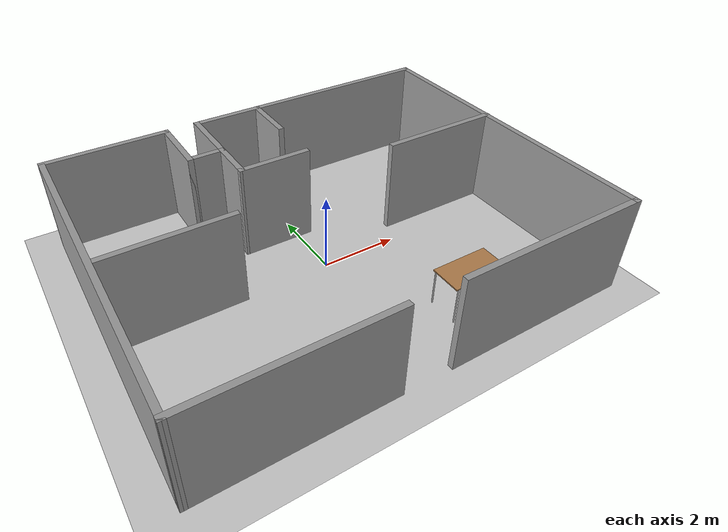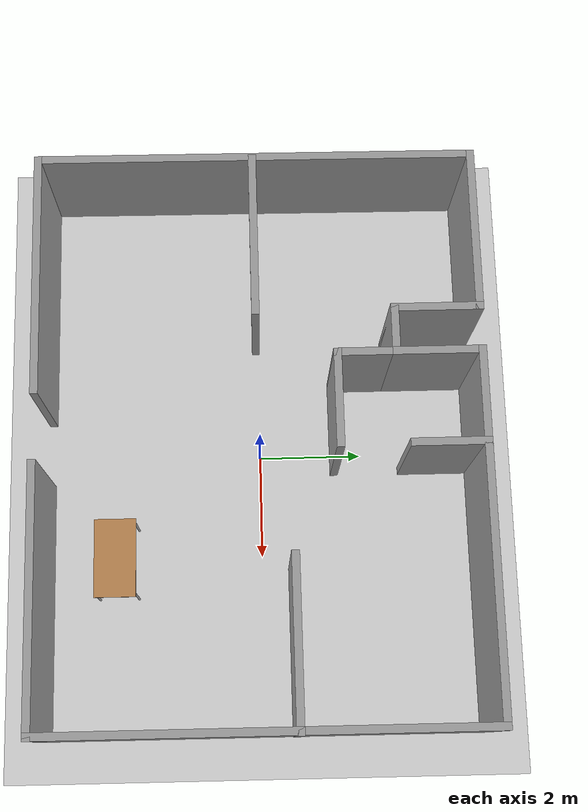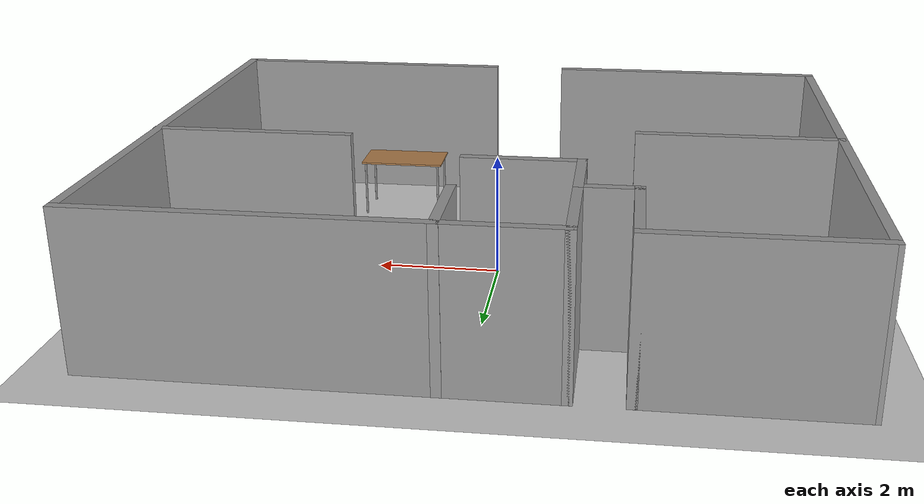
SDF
<sdf version="1.6">
 <world name="default">
  <light name="sun" type="directional">
   <pose>0 0 10 0 -0 0</pose>
   <diffuse>0.8 0.8 0.8 1</diffuse>
   <specular>0.2 0.2 0.2 1</specular>
   <attenuation>
    <range>1000</range>
    <constant>0.9</constant>
    <linear>0.01</linear>
    <quadratic>0.001</quadratic>
   </attenuation>
   <direction>-0.5 0.1 -0.9</direction>
  </light>
  <model name="ground_plane">
   <static>1</static>
   <link name="link">
    <collision name="collision">
     <geometry><plane><normal>0 0 1</normal><size>100 100</size></plane></geometry>
     <surface>
      <contact><collide_bitmask>65535</collide_bitmask></contact>
      <friction><ode><mu>100</mu><mu2>50</mu2></ode></friction>
     </surface>
    </collision>
    <visual name="visual">
     <cast_shadows>0</cast_shadows>
     <geometry><plane><normal>0 0 1</normal><size>100 100</size></plane></geometry>
     <material>
      <script><uri>file://media/materials/scripts/gazebo.material</uri><name>Gazebo/Grey</name></script>
     </material>
    </visual>
   </link>
  </model>
  <gravity>0 0 -9.8</gravity>
  <magnetic_field>6e-06 2.3e-05 -4.2e-05</magnetic_field>
  <atmosphere type="adiabatic"/>
  <physics name="default_physics" default="0" type="ode">
   <max_step_size>0.001</max_step_size>
   <real_time_factor>1</real_time_factor>
   <real_time_update_rate>1000</real_time_update_rate>
  </physics>
  <scene><ambient>0.4 0.4 0.4 1</ambient><background>0.7 0.7 0.7 1</background><shadows>1</shadows></scene>
  <spherical_coordinates>
   <surface_model>EARTH_WGS84</surface_model>
   <latitude_deg>0</latitude_deg>
   <longitude_deg>0</longitude_deg>
   <elevation>0</elevation>
   <heading_deg>0</heading_deg>
  </spherical_coordinates>
  <model name="living_lab">
   <link name="Wall_0">
    <collision name="Wall_0_Collision">
     <geometry><box><size>3.25 0.15 2.5</size></box></geometry>
     <pose>0 0 1.25 0 -0 0</pose>
    </collision>
    <visual name="Wall_0_Visual">
     <pose>0 0 1.25 0 -0 0</pose>
     <geometry><box><size>3.25 0.15 2.5</size></box></geometry>
     <material>
      <script><uri>file://media/materials/scripts/gazebo.material</uri><name>Gazebo/Grey</name></script>
      <ambient>1 1 1 1</ambient>
     </material>
     <meta><layer>0</layer></meta>
    </visual>
    <pose>-3.83237 4.17394 0 0 -0 0</pose>
   </link>
   <link name="Wall_1">
    <collision name="Wall_1_Collision">
     <geometry><box><size>1.75 0.15 2.5</size></box></geometry>
     <pose>0 0 1.25 0 -0 0</pose>
    </collision>
    <visual name="Wall_1_Visual">
     <pose>0 0 1.25 0 -0 0</pose>
     <geometry><box><size>1.75 0.15 2.5</size></box></geometry>
     <material>
      <script><uri>file://media/materials/scripts/gazebo.material</uri><name>Gazebo/Grey</name></script>
      <ambient>1 1 1 1</ambient>
     </material>
     <meta><layer>0</layer></meta>
    </visual>
    <pose>-2.28237 3.37394 0 0 -0 -1.5708</pose>
   </link>
   <link name="Wall_10">
    <collision name="Wall_10_Collision">
     <geometry><box><size>7 0.15 2.5</size></box></geometry>
     <pose>0 0 1.25 0 -0 0</pose>
    </collision>
    <visual name="Wall_10_Visual">
     <pose>0 0 1.25 0 -0 0</pose>
     <geometry><box><size>7 0.15 2.5</size></box></geometry>
     <material>
      <script><uri>file://media/materials/scripts/gazebo.material</uri><name>Gazebo/Grey</name></script>
      <ambient>1 1 1 1</ambient>
     </material>
     <meta><layer>0</layer></meta>
    </visual>
    <pose>1.99263 4.17394 0 0 -0 0</pose>
   </link>
   <link name="Wall_12">
    <collision name="Wall_12_Collision">
     <geometry><box><size>8.5 0.15 2.5</size></box></geometry>
     <pose>0 0 1.25 0 -0 0</pose>
    </collision>
    <visual name="Wall_12_Visual">
     <pose>0 0 1.25 0 -0 0</pose>
     <geometry><box><size>8.5 0.15 2.5</size></box></geometry>
     <material>
      <script><uri>file://media/materials/scripts/gazebo.material</uri><name>Gazebo/Grey</name></script>
      <ambient>1 1 1 1</ambient>
     </material>
     <meta><layer>0</layer></meta>
    </visual>
    <pose>5.41763 -0.001063 0 0 -0 -1.5708</pose>
   </link>
   <link name="Wall_13">
    <collision name="Wall_13_Collision">
     <geometry><box><size>5 0.15 2.5</size></box></geometry>
     <pose>0 0 1.25 0 -0 0</pose>
    </collision>
    <visual name="Wall_13_Visual">
     <pose>0 0 1.25 0 -0 0</pose>
     <geometry><box><size>5 0.15 2.5</size></box></geometry>
     <material>
      <script><uri>file://media/materials/scripts/gazebo.material</uri><name>Gazebo/Grey</name></script>
      <ambient>1 1 1 1</ambient>
     </material>
     <meta><layer>0</layer></meta>
    </visual>
    <pose>2.99263 -4.17606 0 0 -0 3.14159</pose>
   </link>
   <link name="Wall_15">
    <collision name="Wall_15_Collision">
     <geometry><box><size>4.75 0.15 2.5</size></box></geometry>
     <pose>0 0 1.25 0 -0 0</pose>
    </collision>
    <visual name="Wall_15_Visual">
     <pose>0 0 1.25 0 -0 0</pose>
     <geometry><box><size>4.75 0.15 2.5</size></box></geometry>
     <material>
      <script><uri>file://media/materials/scripts/gazebo.material</uri><name>Gazebo/Grey</name></script>
      <ambient>1 1 1 1</ambient>
     </material>
     <meta><layer>0</layer></meta>
    </visual>
    <pose>-3.12746 -4.16076 0 0 -0 3.14159</pose>
   </link>
   <link name="Wall_17">
    <collision name="Wall_17_Collision">
     <geometry><box><size>8.48482 0.15 2.5</size></box></geometry>
     <pose>0 0 1.25 0 -0 0</pose>
    </collision>
    <visual name="Wall_17_Visual">
     <pose>0 0 1.25 0 -0 0</pose>
     <geometry><box><size>8.48482 0.15 2.5</size></box></geometry>
     <material>
      <script><uri>file://media/materials/scripts/gazebo.material</uri><name>Gazebo/Grey</name></script>
      <ambient>1 1 1 1</ambient>
     </material>
     <meta><layer>0</layer></meta>
    </visual>
    <pose>-5.40491 0.006586 0 0 -0 1.56539</pose>
   </link>
   <link name="Wall_19">
    <collision name="Wall_19_Collision">
     <geometry><box><size>3.25 0.15 2.5</size></box></geometry>
     <pose>0 0 1.25 0 -0 0</pose>
    </collision>
    <visual name="Wall_19_Visual">
     <pose>0 0 1.25 0 -0 0</pose>
     <geometry><box><size>3.25 0.15 2.5</size></box></geometry>
     <material>
      <script><uri>file://media/materials/scripts/gazebo.material</uri><name>Gazebo/Grey</name></script>
      <ambient>1 1 1 1</ambient>
     </material>
     <meta><layer>0</layer></meta>
    </visual>
    <pose>-3.82313 -0.037483 0 0 -0 0</pose>
   </link>
   <link name="Wall_2">
    <collision name="Wall_2_Collision">
     <geometry><box><size>1 0.15 2.5</size></box></geometry>
     <pose>0 0 1.25 0 -0 0</pose>
    </collision>
    <visual name="Wall_2_Visual">
     <pose>0 0 1.25 0 -0 0</pose>
     <geometry><box><size>1 0.15 2.5</size></box></geometry>
     <material>
      <script><uri>file://media/materials/scripts/gazebo.material</uri><name>Gazebo/Grey</name></script>
      <ambient>1 1 1 1</ambient>
     </material>
     <meta><layer>0</layer></meta>
    </visual>
    <pose>-1.85737 2.57394 0 0 -0 0</pose>
   </link>
   <link name="Wall_21">
    <collision name="Wall_21_Collision">
     <geometry><box><size>3.25 0.15 2.5</size></box></geometry>
     <pose>0 0 1.25 0 -0 0</pose>
    </collision>
    <visual name="Wall_21_Visual">
     <pose>0 0 1.25 0 -0 0</pose>
     <geometry><box><size>3.25 0.15 2.5</size></box></geometry>
     <material>
      <script><uri>file://media/materials/scripts/gazebo.material</uri><name>Gazebo/Grey</name></script>
      <ambient>1 1 1 1</ambient>
     </material>
     <meta><layer>0</layer></meta>
    </visual>
    <pose>3.87786 0.586038 0 0 -0 3.14159</pose>
   </link>
   <link name="Wall_24">
    <collision name="Wall_24_Collision">
     <geometry><box><size>1.5 0.15 2.5</size></box></geometry>
     <pose>0 0 1.25 0 -0 0</pose>
    </collision>
    <visual name="Wall_24_Visual">
     <pose>0 0 1.25 0 -0 0</pose>
     <geometry><box><size>1.5 0.15 2.5</size></box></geometry>
     <material>
      <script><uri>file://media/materials/scripts/gazebo.material</uri><name>Gazebo/Grey</name></script>
      <ambient>1 1 1 1</ambient>
     </material>
     <meta><layer>0</layer></meta>
    </visual>
    <pose>0.319016 3.50106 0 0 -0 -1.5708</pose>
   </link>
   <link name="Wall_3">
    <collision name="Wall_3_Collision">
     <geometry><box><size>1.25 0.15 2.5</size></box></geometry>
     <pose>0 0 1.25 0 -0 0</pose>
    </collision>
    <visual name="Wall_3_Visual">
     <pose>0 0 1.25 0 -0 0</pose>
     <geometry><box><size>1.25 0.15 2.5</size></box></geometry>
     <material>
      <script><uri>file://media/materials/scripts/gazebo.material</uri><name>Gazebo/Grey</name></script>
      <ambient>1 1 1 1</ambient>
     </material>
     <meta><layer>0</layer></meta>
    </visual>
    <pose>-1.43237 2.02394 0 0 -0 -1.5708</pose>
   </link>
   <link name="Wall_4">
    <collision name="Wall_4_Collision">
     <geometry><box><size>1.89133 0.15 2.5</size></box></geometry>
     <pose>0 0 1.25 0 -0 0</pose>
    </collision>
    <visual name="Wall_4_Visual">
     <pose>0 0 1.25 0 -0 0</pose>
     <geometry><box><size>1.89133 0.15 2.5</size></box></geometry>
     <material>
      <script><uri>file://media/materials/scripts/gazebo.material</uri><name>Gazebo/Grey</name></script>
      <ambient>1 1 1 1</ambient>
     </material>
     <meta><layer>0</layer></meta>
    </visual>
    <pose>-0.561748 1.47291 0 0 -0 -0.001179</pose>
   </link>
   <link name="Wall_9">
    <collision name="Wall_9_Collision">
     <geometry><box><size>1.75 0.15 2.5</size></box></geometry>
     <pose>0 0 1.25 0 -0 0</pose>
    </collision>
    <visual name="Wall_9_Visual">
     <pose>0 0 1.25 0 -0 0</pose>
     <geometry><box><size>1.75 0.15 2.5</size></box></geometry>
     <material>
      <script><uri>file://media/materials/scripts/gazebo.material</uri><name>Gazebo/Grey</name></script>
      <ambient>1 1 1 1</ambient>
     </material>
     <meta><layer>0</layer></meta>
    </visual>
    <pose>-1.43237 3.37394 0 0 -0 1.5708</pose>
   </link>
   <static>1</static>
  </model>
  <audio><device>default</device></audio>
  <model name="table">
   <static>1</static>
   <link name="link">
    <collision name="surface">
     <pose>0 0 1 0 -0 0</pose>
     <geometry><box><size>1.5 0.8 0.03</size></box></geometry>
     <surface><friction><ode><mu>0.6</mu><mu2>0.6</mu2></ode></friction></surface>
    </collision>
    <visual name="visual1">
     <pose>0 0 1 0 -0 0</pose>
     <geometry><box><size>1.5 0.8 0.03</size></box></geometry>
     <material>
      <script><uri>file://media/materials/scripts/gazebo.material</uri><name>Gazebo/Wood</name></script>
     </material>
    </visual>
    <collision name="front_left_leg">
     <pose>0.68 0.38 0.5 0 -0 0</pose>
     <geometry><cylinder><radius>0.02</radius><length>1</length></cylinder></geometry>
    </collision>
    <visual name="front_left_leg">
     <pose>0.68 0.38 0.5 0 -0 0</pose>
     <geometry><cylinder><radius>0.02</radius><length>1</length></cylinder></geometry>
     <material>
      <script><uri>file://media/materials/scripts/gazebo.material</uri><name>Gazebo/Grey</name></script>
     </material>
    </visual>
    <collision name="front_right_leg">
     <pose>0.68 -0.38 0.5 0 -0 0</pose>
     <geometry><cylinder><radius>0.02</radius><length>1</length></cylinder></geometry>
    </collision>
    <visual name="front_right_leg">
     <pose>0.68 -0.38 0.5 0 -0 0</pose>
     <geometry><cylinder><radius>0.02</radius><length>1</length></cylinder></geometry>
     <material>
      <script><uri>file://media/materials/scripts/gazebo.material</uri><name>Gazebo/Grey</name></script>
     </material>
    </visual>
    <collision name="back_right_leg">
     <pose>-0.68 -0.38 0.5 0 -0 0</pose>
     <geometry><cylinder><radius>0.02</radius><length>1</length></cylinder></geometry>
    </collision>
    <visual name="back_right_leg">
     <pose>-0.68 -0.38 0.5 0 -0 0</pose>
     <geometry><cylinder><radius>0.02</radius><length>1</length></cylinder></geometry>
     <material>
      <script><uri>file://media/materials/scripts/gazebo.material</uri><name>Gazebo/Grey</name></script>
     </material>
    </visual>
    <collision name="back_left_leg">
     <pose>-0.68 0.38 0.5 0 -0 0</pose>
     <geometry><cylinder><radius>0.02</radius><length>1</length></cylinder></geometry>
    </collision>
    <visual name="back_left_leg">
     <pose>-0.68 0.38 0.5 0 -0 0</pose>
     <geometry><cylinder><radius>0.02</radius><length>1</length></cylinder></geometry>
     <material>
      <script><uri>file://media/materials/scripts/gazebo.material</uri><name>Gazebo/Grey</name></script>
     </material>
    </visual>
   </link>
   <pose>2.10684 -2.81196 0 0 -0 0</pose>
  </model>
 </world>
</sdf>
